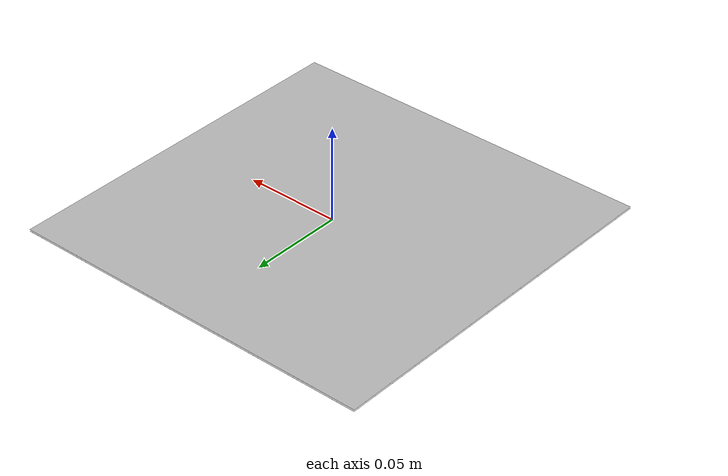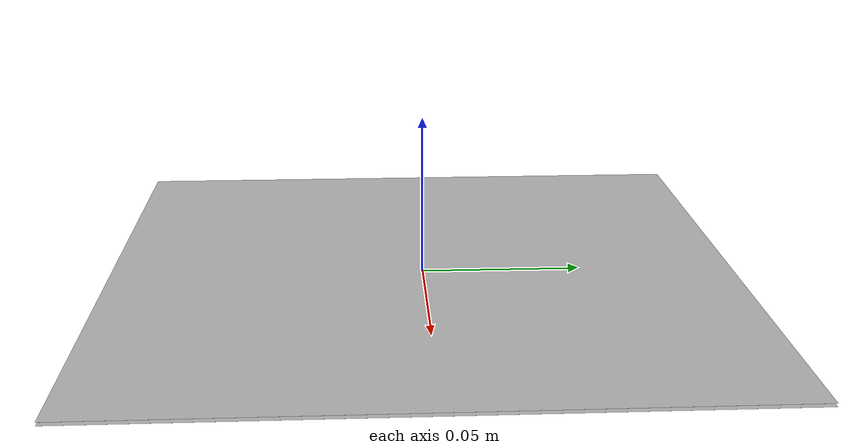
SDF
<?xml version="1.0" encoding="utf-8"?>
<sdf version="1.5">
  <model name="marker_aruco-7">
    <pose frame="">0 0 0 0 0 0</pose>
    <link name="link_0">
      <pose frame="">0 0 0 0 0 0</pose>
      <visual name="visual">
        <geometry>
          <box>
            <size>0.197 0.197 1e-5</size>
          </box>
        </geometry>
        <material>
          <script>
            <uri>model://marker_aruco-7/materials/scripts</uri>
            <uri>model://marker_aruco-7/materials/textures</uri>
            <name>marker_aruco-7/marker</name>
          </script>
        </material>
        <pose frame="">0 0 0.001 0 0 0</pose>
        <cast_shadows>1</cast_shadows>
        <transparency>0</transparency>
      </visual>
      <collision name="collision">
        <pose frame="">0 0 0.001 0 0 0</pose>
        <geometry>
          <box>
            <size>0.197 0.197 1e-5</size>
          </box>
        </geometry>
      </collision>
      <visual name="visual_backside">
        <pose frame="">0 0 0 0 0 0</pose>
        <geometry>
          <box>
            <size>0.197 0.197 1e-5</size>
          </box>
        </geometry>
        <material>
          <script>Gazebo/Grey</script>
        </material>
      </visual>
      <collision name="collision_backside">
        <pose frame="">0 0 0 0 0 0</pose>
        <geometry>
          <box>
            <size>0.197 0.197 1e-5</size>
          </box>
        </geometry>
      </collision>
    </link>
    <static>1</static>
    <allow_auto_disable>1</allow_auto_disable>
  </model>
</sdf>
